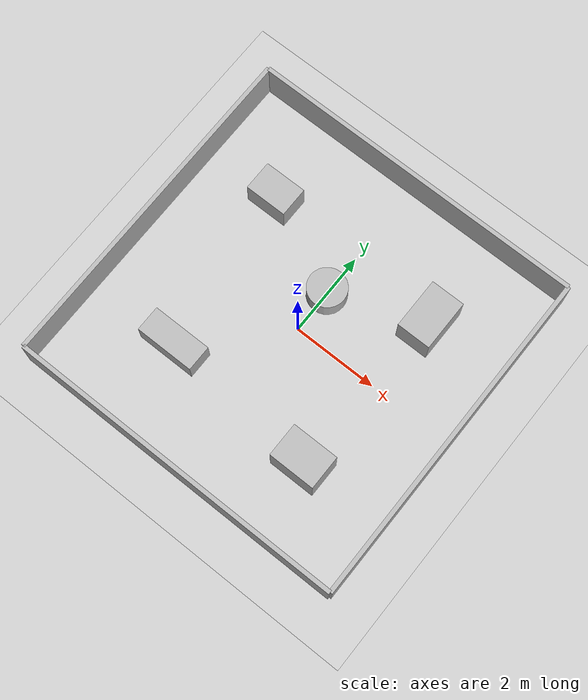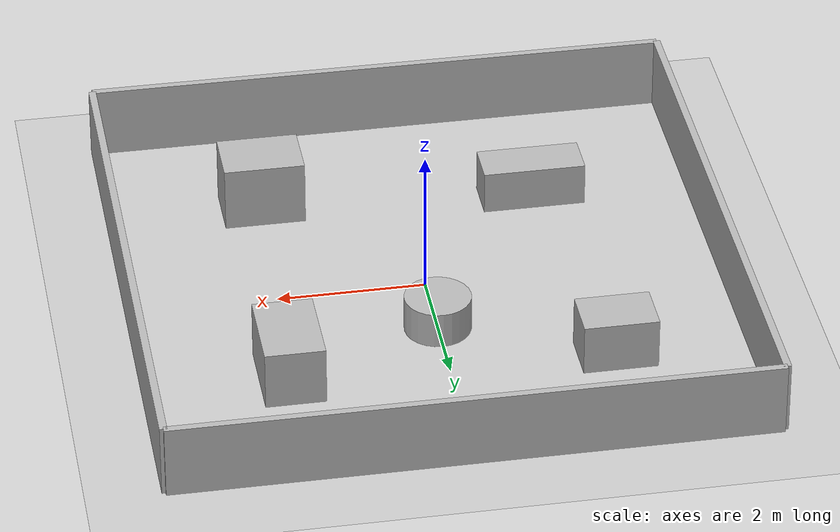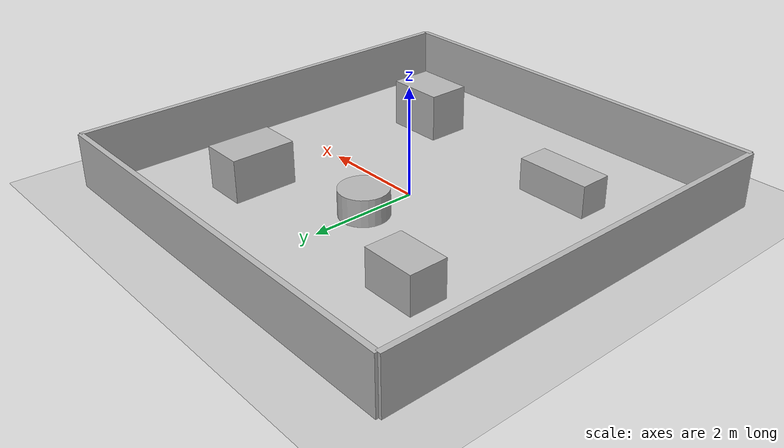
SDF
<?xml version="1.0"?>
<sdf version="1.6">
  <world name="multi_obstacle">
    <include>
      <uri>model://sun</uri>
    </include>

    <include>
      <uri>model://ground_plane</uri>
    </include>

    <model name="wall_north">
      <static>true</static>
      <pose>0 4 0.5 0 0 0</pose>
      <link name="link">
        <collision name="collision">
          <geometry><box><size>8 0.1 1.0</size></box></geometry>
        </collision>
        <visual name="visual">
          <geometry><box><size>8 0.1 1.0</size></box></geometry>
        </visual>
      </link>
    </model>

    <model name="wall_south">
      <static>true</static>
      <pose>0 -4 0.5 0 0 0</pose>
      <link name="link">
        <collision name="collision">
          <geometry><box><size>8 0.1 1.0</size></box></geometry>
        </collision>
        <visual name="visual">
          <geometry><box><size>8 0.1 1.0</size></box></geometry>
        </visual>
      </link>
    </model>

    <model name="wall_east">
      <static>true</static>
      <pose>4 0 0.5 0 0 0</pose>
      <link name="link">
        <collision name="collision">
          <geometry><box><size>0.1 8 1.0</size></box></geometry>
        </collision>
        <visual name="visual">
          <geometry><box><size>0.1 8 1.0</size></box></geometry>
        </visual>
      </link>
    </model>

    <model name="wall_west">
      <static>true</static>
      <pose>-4 0 0.5 0 0 0</pose>
      <link name="link">
        <collision name="collision">
          <geometry><box><size>0.1 8 1.0</size></box></geometry>
        </collision>
        <visual name="visual">
          <geometry><box><size>0.1 8 1.0</size></box></geometry>
        </visual>
      </link>
    </model>

    <model name="obstacle_north_west">
      <static>true</static>
      <pose>-2.2 2.0 0.35 0 0 0</pose>
      <link name="link">
        <collision name="collision">
          <geometry><box><size>1.0 0.7 0.7</size></box></geometry>
        </collision>
        <visual name="visual">
          <geometry><box><size>1.0 0.7 0.7</size></box></geometry>
        </visual>
      </link>
    </model>

    <model name="obstacle_north_east">
      <static>true</static>
      <pose>2.1 1.8 0.4 0 0 0</pose>
      <link name="link">
        <collision name="collision">
          <geometry><box><size>0.8 1.2 0.8</size></box></geometry>
        </collision>
        <visual name="visual">
          <geometry><box><size>0.8 1.2 0.8</size></box></geometry>
        </visual>
      </link>
    </model>

    <model name="obstacle_south_west">
      <static>true</static>
      <pose>-1.8 -1.9 0.3 0 0 0</pose>
      <link name="link">
        <collision name="collision">
          <geometry><box><size>1.4 0.6 0.6</size></box></geometry>
        </collision>
        <visual name="visual">
          <geometry><box><size>1.4 0.6 0.6</size></box></geometry>
        </visual>
      </link>
    </model>

    <model name="obstacle_south_east">
      <static>true</static>
      <pose>1.9 -2.2 0.45 0 0 0</pose>
      <link name="link">
        <collision name="collision">
          <geometry><box><size>1.1 0.8 0.9</size></box></geometry>
        </collision>
        <visual name="visual">
          <geometry><box><size>1.1 0.8 0.9</size></box></geometry>
        </visual>
      </link>
    </model>

    <model name="obstacle_center">
      <static>true</static>
      <pose>0.0 1.0 0.25 0 0 0</pose>
      <link name="link">
        <collision name="collision">
          <geometry><cylinder><radius>0.45</radius><length>0.5</length></cylinder></geometry>
        </collision>
        <visual name="visual">
          <geometry><cylinder><radius>0.45</radius><length>0.5</length></cylinder></geometry>
        </visual>
      </link>
    </model>
  </world>
</sdf>
